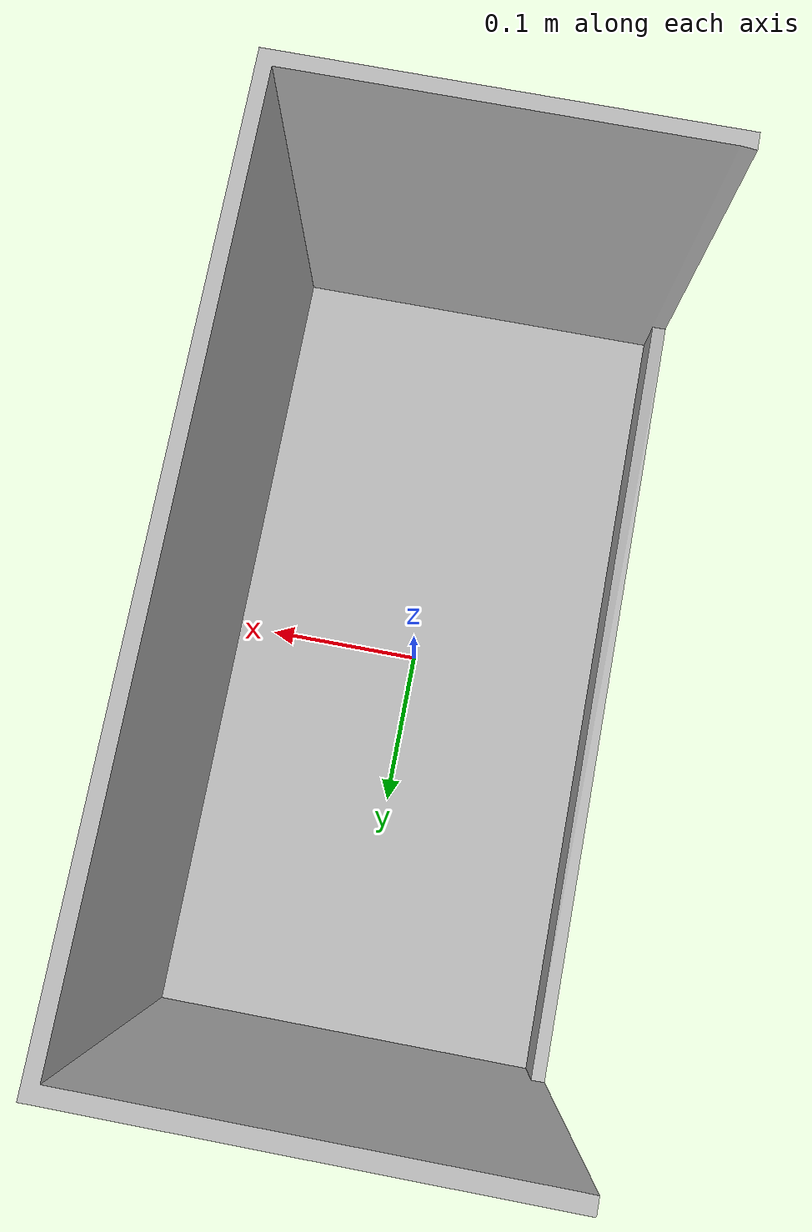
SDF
<?xml version="1.0" ?>
<sdf version="1.5">
  <model name="container_side_open">
    <pose>0 0 0  0 0 0</pose>
    <static>true</static>
    <link name="body">
      <visual name="visual">
        <geometry>
          <mesh><uri>model://container_side_open/container_side_open.dae</uri></mesh>
        </geometry>
      </visual>
      <collision name="collision">
        <geometry>
          <mesh><uri>model://container_side_open/container_side_open.dae</uri></mesh>
        </geometry>
      </collision>
    </link>
  </model>
</sdf>
